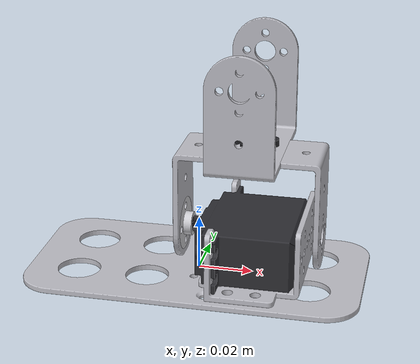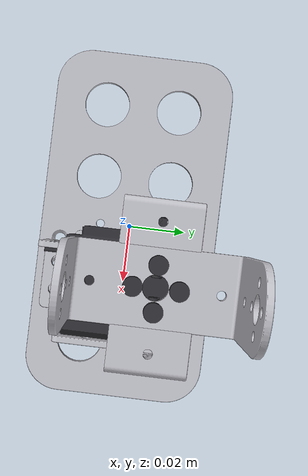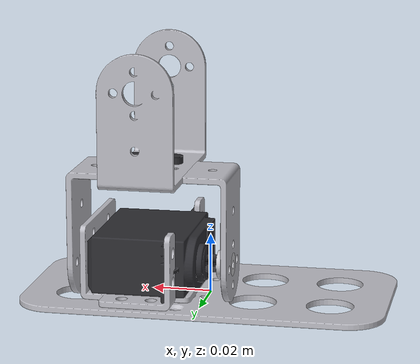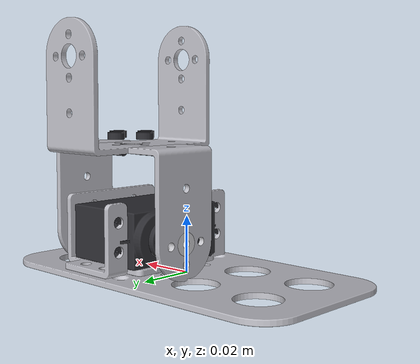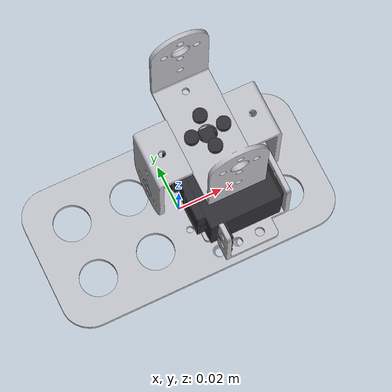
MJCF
<?xml version='1.0' encoding='utf-8'?>
<mujoco model="ankle_assembly_left">
  <compiler angle="radian" meshdir=".." autolimits="true"/>
  <visual>
    <global offwidth="1024" offheight="1024"/>
    <headlight ambient="0.55 0.55 0.55" diffuse="0.6 0.6 0.6" specular="0.2 0.2 0.2"/>
  </visual>
  <default>
    <default class="visual"><geom type="mesh" contype="0" conaffinity="0" group="2" density="0"/></default>
    <default class="collision"><geom type="mesh" group="3"/></default>
  </default>
  <asset>
    <mesh name="foot" file="大脚板/脚板支架.STL" scale="0.001 0.001 0.001"/>
    <mesh name="multi" file="多功能/多功能支架.STL" scale="0.001 0.001 0.001"/>
    <mesh name="shortU" file="短U/短U支架.STL" scale="0.001 0.001 0.001"/>
    <mesh name="servo" file="舵机/舵机.STL" scale="0.001 0.001 0.001"/>
    <mesh name="horn" file="金属舵盘/金属舵盘.STL" scale="0.001 0.001 0.001"/>
    <material name="bracket" rgba="0.75 0.75 0.78 1"/>
    <material name="dark" rgba="0.18 0.18 0.20 1"/>
    <material name="horn" rgba="0.80 0.80 0.82 1"/>
  </asset>
  <worldbody>
    <body name="foot" pos="0 0 0">
      <geom name="foot_visual" mesh="foot" class="visual" material="bracket" pos="-0.06175 -0.03175 -0.001"/>
      <geom name="foot_collision" mesh="foot" class="collision" pos="-0.06175 -0.03175 -0.001" density="2700"/>

      <body name="multi" pos="0.022 0 0.0135" quat="0.70710678 0 0 0.70710678">
        <geom name="multi_visual" mesh="multi" class="visual" material="bracket" pos="-0.029 -0.0185 -0.0125"/>
        <geom name="multi_collision" mesh="multi" class="collision" pos="-0.029 -0.0185 -0.0125" density="2700"/>
      </body>

      <body name="ankle_servo" pos="0.017 0 0.01275" quat="0 -0.7071068 0 0.7071068">
        <geom name="servo_visual" mesh="servo" class="visual" material="dark" pos="-0.009752 -0.027 -0.0215"/>
        <geom name="servo_collision" mesh="servo" class="collision" pos="-0.009752 -0.027 -0.0215" density="1600"/>
      </body>

      <body name="horn" pos="-0.007 0.010 0.01275" quat="0.5 0.5 0.5 -0.5">
        <geom name="horn_visual" mesh="horn" class="visual" material="horn" pos="-0.010 -0.0026 -0.010"/>
      </body>

      <!-- little_u_assembly_left, rotated 90 deg about Z and shifted so its lower big hole
           lines up with the servo shaft / horn centre. -->
      <body name="shortU_up" pos="0.0175 0.010 0.065" quat="0.5 0.5 0.5 0.5">
        <geom name="shortU_up_visual" mesh="shortU" class="visual" material="bracket" pos="-0.027 -0.02225 -0.0125"/>
        <geom name="shortU_up_collision" mesh="shortU" class="collision" pos="-0.027 -0.02225 -0.0125" density="2700"/>
      </body>

      <body name="shortU_down" pos="0.0175 0.010 0.0225" quat="0 0 -0.7071068 0.7071068">
        <geom name="shortU_down_visual" mesh="shortU" class="visual" material="bracket" pos="-0.027 -0.02225 -0.0125"/>
        <geom name="shortU_down_collision" mesh="shortU" class="collision" pos="-0.027 -0.02225 -0.0125" density="2700"/>
      </body>

      <geom name="screw_1" type="cylinder" size="0.0016 0.004" pos="0.0175 0.017 0.04275" quat="0.5 0.5 0.5 0.5" material="dark" contype="0" conaffinity="0" group="2"/>
      <geom name="screw_2" type="cylinder" size="0.0016 0.004" pos="0.0175 0.003 0.04275" quat="0.5 0.5 0.5 0.5" material="dark" contype="0" conaffinity="0" group="2"/>
      <geom name="screw_3" type="cylinder" size="0.0016 0.004" pos="0.0105 0.010 0.04275" quat="0.5 0.5 0.5 0.5" material="dark" contype="0" conaffinity="0" group="2"/>
      <geom name="screw_4" type="cylinder" size="0.0016 0.004" pos="0.0245 0.010 0.04275" quat="0.5 0.5 0.5 0.5" material="dark" contype="0" conaffinity="0" group="2"/>
      <geom name="nut_1" type="cylinder" size="0.003 0.0012" pos="0.0175 0.017 0.04795" material="dark" contype="0" conaffinity="0" group="2"/>
      <geom name="nut_2" type="cylinder" size="0.003 0.0012" pos="0.0175 0.003 0.04795" material="dark" contype="0" conaffinity="0" group="2"/>
      <geom name="nut_3" type="cylinder" size="0.003 0.0012" pos="0.0105 0.010 0.04795" material="dark" contype="0" conaffinity="0" group="2"/>
      <geom name="nut_4" type="cylinder" size="0.003 0.0012" pos="0.0245 0.010 0.04795" material="dark" contype="0" conaffinity="0" group="2"/>
    </body>
  </worldbody>
</mujoco>
